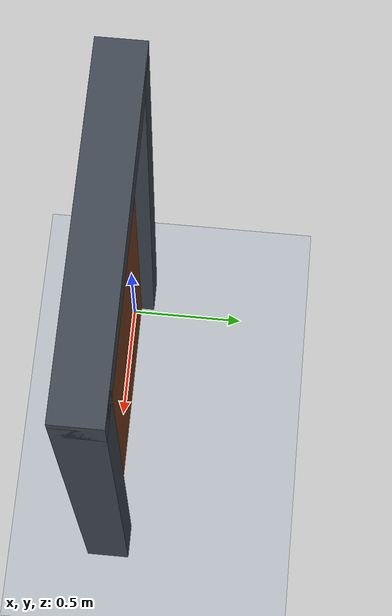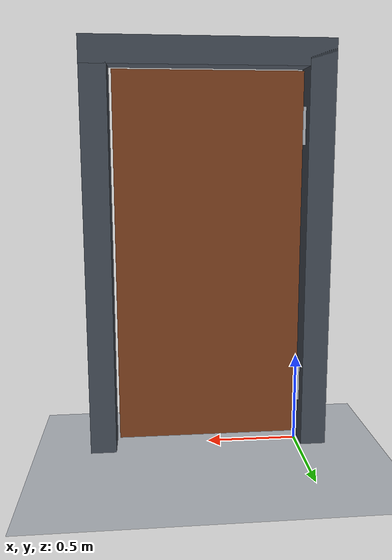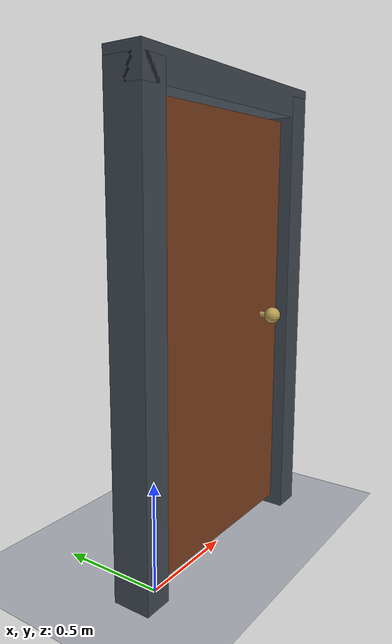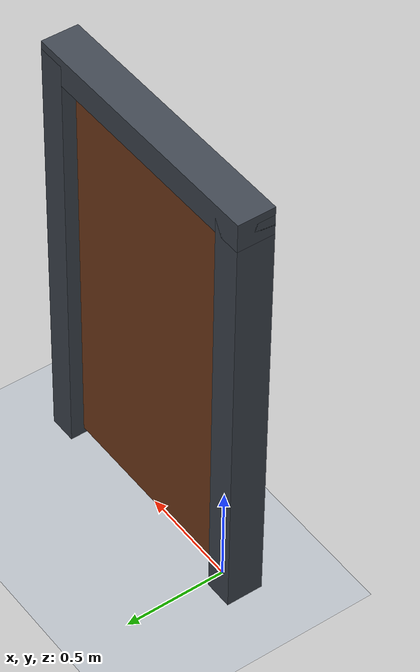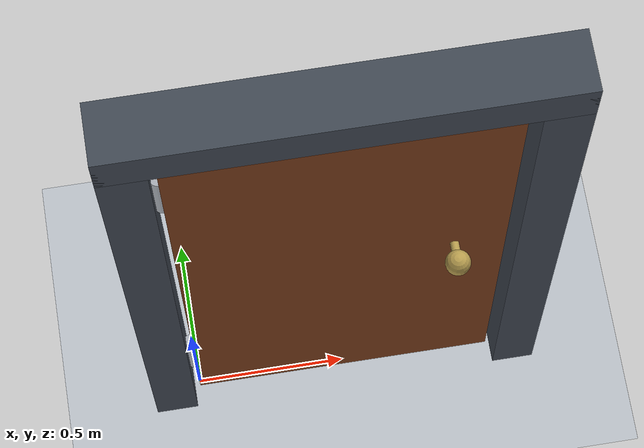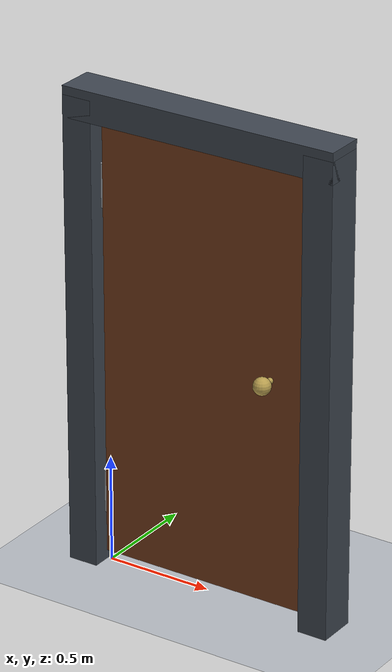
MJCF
<mujoco model="self_closing_door">
  <compiler angle="radian" autolimits="true"/>
  <option timestep="0.002"/>

  <visual>
    <headlight ambient="0.35 0.35 0.35" diffuse="0.65 0.65 0.65" specular="0.2 0.2 0.2"/>
  </visual>

  <worldbody>
    <light name="overhead" pos="1 -2 5" dir="0 0 -1"/>
    <camera name="overview" pos="3 -4 2.8" xyaxes="0.8 0.6 0 -0.2 0.267 0.943"/>

    <geom name="floor" type="plane" size="4 4 0.1" rgba="0.72 0.74 0.77 1"/>

    <geom name="hinge_jamb" type="box" pos="-0.09 0 1.09" size="0.07 0.09 1.09" contype="0" conaffinity="0" rgba="0.25 0.28 0.32 1"/>
    <geom name="closing_jamb" type="box" pos="1.09 0 1.09" size="0.07 0.09 1.09" contype="0" conaffinity="0" rgba="0.25 0.28 0.32 1"/>
    <geom name="header" type="box" pos="0.5 0 2.15" size="0.66 0.09 0.07" contype="0" conaffinity="0" rgba="0.25 0.28 0.32 1"/>

    <body name="door" pos="0 0 0.06">
      <!-- A spring closer is preloaded against the hinge's shut-position stop. -->
      <joint name="hinge" type="hinge" pos="0 0 0" axis="0 0 1" limited="true" range="0 1.7" stiffness="45" springref="-0.035" damping="26" solreflimit="0.01 1" solimplimit="0.99 0.999 0.001"/>

      <geom name="door_panel" type="box" pos="0.5 0 1" size="0.5 0.035 1" mass="12" rgba="0.47 0.24 0.11 1"/>
      <geom name="lower_hinge_barrel" type="cylinder" pos="0 0 0.28" size="0.028 0.10" mass="0.08" rgba="0.65 0.67 0.70 1"/>
      <geom name="upper_hinge_barrel" type="cylinder" pos="0 0 1.72" size="0.028 0.10" mass="0.08" rgba="0.65 0.67 0.70 1"/>
      <geom name="knob_stem" type="cylinder" fromto="0.84 -0.035 1.05 0.84 -0.085 1.05" size="0.014" mass="0.03" rgba="0.72 0.62 0.31 1"/>
      <geom name="door_knob" type="sphere" pos="0.84 -0.10 1.05" size="0.04" mass="0.10" rgba="0.72 0.62 0.31 1"/>
    </body>
  </worldbody>

  <keyframe>
    <key name="start" qpos="1.35" qvel="0"/>
  </keyframe>
</mujoco>
